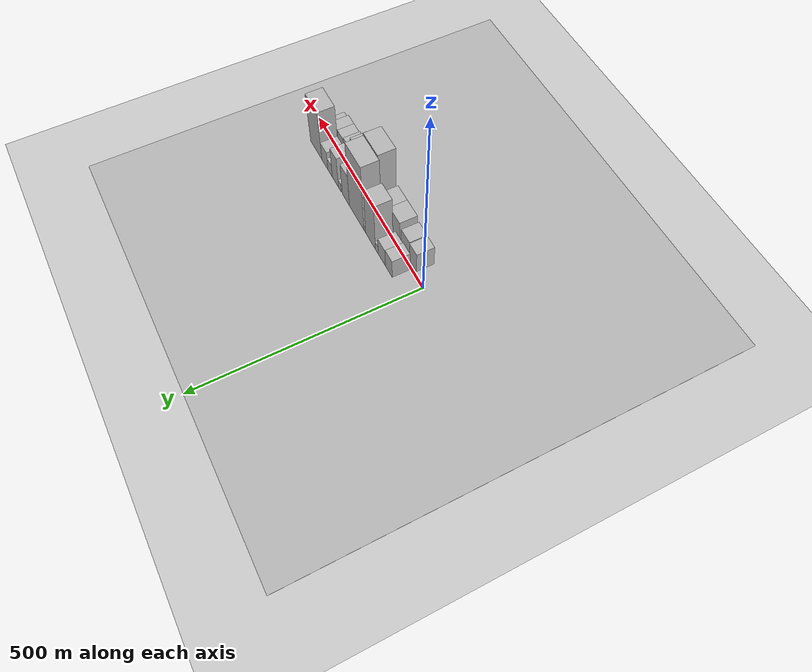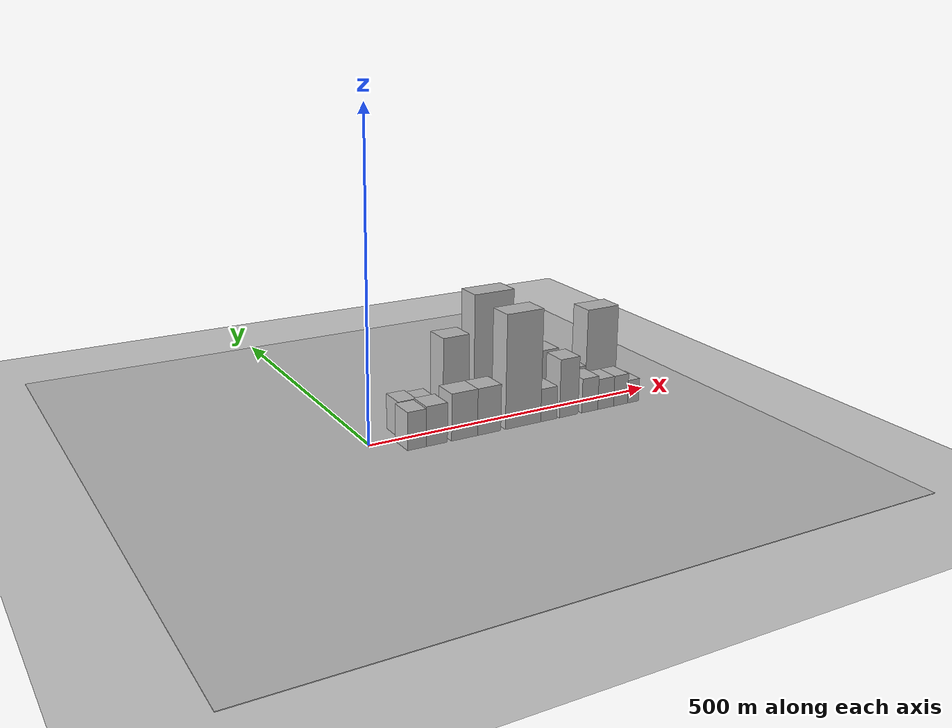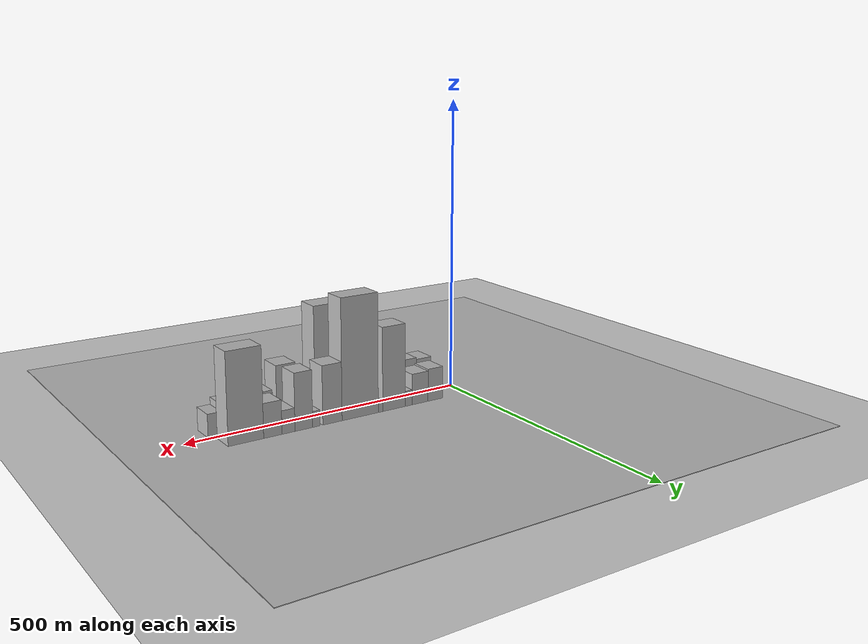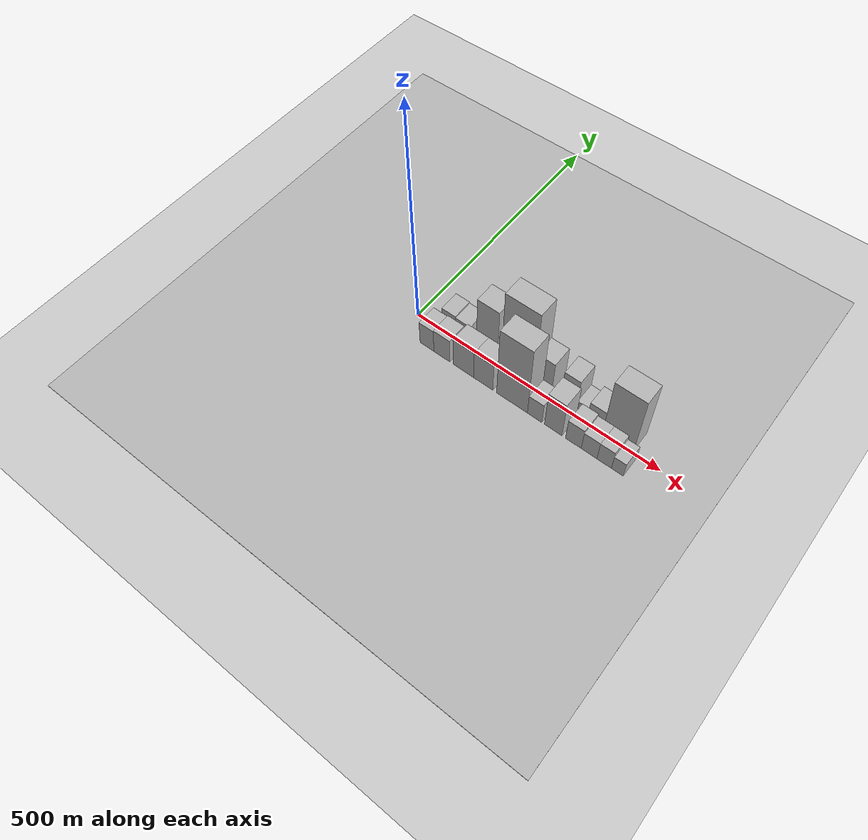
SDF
<?xml version="1.0" encoding="utf-8"?>

<sdf version="1.6">

   <world name="default">

      <gui fullscreen="0">

         <camera name="user_camera">

            <pose>-15 0 4.57585 0 0 0</pose>

            <view_controller>orbit</view_controller>

         </camera>

      </gui>

      <scene>

         <sky>

           <clouds>

             <speed>12</speed>

           </clouds>

         </sky>

         <ambient>0.4 0.4 0.4 1</ambient>

         <background>0.7 0.7 0.7 1</background>

         <shadows>1</shadows>

      </scene>

      <gravity>0 0 -9.8066</gravity>

      <magnetic_field>6e-06 2.3e-05 -4.2e-05</magnetic_field>

      <physics default="0" name="default_physics" type="ode">

         <ode>

            <solver>

               <type>quick</type>

               <iters>10</iters>

               <sor>1.0</sor>

               <use_dynamic_moi_rescaling>0</use_dynamic_moi_rescaling>

            </solver>

            <constraints>

               <cfm>0</cfm>

               <erp>0.2</erp>

               <contact_max_correcting_vel>100</contact_max_correcting_vel>

               <contact_surface_layer>0.001</contact_surface_layer>

            </constraints>

         </ode>

         <max_step_size>0.004</max_step_size>

         <real_time_factor>1</real_time_factor>

         <real_time_update_rate>250</real_time_update_rate>

      </physics>

      <light name="sun" type="directional">

         <cast_shadows>1</cast_shadows>

         <pose>0 0 10 0 0 0</pose>

         <diffuse>0.8 0.8 0.8 1</diffuse>

         <specular>0.2 0.2 0.2 1</specular>

         <attenuation>

            <range>1000</range>

            <constant>0.9</constant>

            <linear>0.01</linear>

            <quadratic>0.001</quadratic>

         </attenuation>

         <direction>-0.5 0.1 -0.9</direction>

      </light>

      <include>

         <name>ground_plane_1</name>

         <uri>model://HANNAS_ground_plane</uri>

         <pose>0 0 0  0 0 0</pose>

      </include>

      <include>

         <name>ground_plane_2</name>

         <uri>model://HANNAS_ground_plane</uri>

         <pose>100 0 0  0 0 0</pose>

      </include>

      <model name="building_1">

         <static>1</static>

         <pose frame="">65.0973 24.5000 0 0.000000 0.000000 1.570796</pose>

         <link name="link">

            <pose frame="">0 0 28.50 0 0 0</pose>

            <collision name="collision">

               <geometry>

                  <box>

                     <size>40.0000 30.1947 57.0000</size>

                  </box>

               </geometry>

               <max_contacts>10</max_contacts>

               <surface>

                  <contact>

                     <ode/>

                  </contact>

                  <bounce/>

                  <friction>

                     <torsional>

                        <ode/>

                     </torsional>

                     <ode/>

                  </friction>

               </surface>

            </collision>

            <visual name="visual">

               <cast_shadows>0</cast_shadows>

               <geometry>

                  <box>

                     <size>40.0000 30.1947 57.0000</size>

                  </box>

               </geometry>

               <material>

                  <script>

                     <uri>model://HANNAS_wall/materials/scripts</uri>

                     <uri>model://HANNAS_wall/materials/textures</uri>

                     <name>vrc/HANNAS_wall</name>

                  </script>

               </material>

            </visual>

            <self_collide>0</self_collide>

            <enable_wind>0</enable_wind>

            <kinematic>0</kinematic>

         </link>

      </model>

      <model name="building_2">

         <static>1</static>

         <pose frame="">96.3905 24.5000 0 0.000000 0.000000 1.570796</pose>

         <link name="link">

            <pose frame="">0 0 27.00 0 0 0</pose>

            <collision name="collision">

               <geometry>

                  <box>

                     <size>40.0000 32.3916 54.0000</size>

                  </box>

               </geometry>

               <max_contacts>10</max_contacts>

               <surface>

                  <contact>

                     <ode/>

                  </contact>

                  <bounce/>

                  <friction>

                     <torsional>

                        <ode/>

                     </torsional>

                     <ode/>

                  </friction>

               </surface>

            </collision>

            <visual name="visual">

               <cast_shadows>0</cast_shadows>

               <geometry>

                  <box>

                     <size>40.0000 32.3916 54.0000</size>

                  </box>

               </geometry>

               <material>

                  <script>

                     <uri>model://HANNAS_wall/materials/scripts</uri>

                     <uri>model://HANNAS_wall/materials/textures</uri>

                     <name>vrc/HANNAS_wall</name>

                  </script>

               </material>

            </visual>

            <self_collide>0</self_collide>

            <enable_wind>0</enable_wind>

            <kinematic>0</kinematic>

         </link>

      </model>

      <model name="building_3">

         <static>1</static>

         <pose frame="">119.2140 24.5000 0 0.000000 0.000000 1.570796</pose>

         <link name="link">

            <pose frame="">0 0 13.50 0 0 0</pose>

            <collision name="collision">

               <geometry>

                  <box>

                     <size>40.0000 13.2555 27.0000</size>

                  </box>

               </geometry>

               <max_contacts>10</max_contacts>

               <surface>

                  <contact>

                     <ode/>

                  </contact>

                  <bounce/>

                  <friction>

                     <torsional>

                        <ode/>

                     </torsional>

                     <ode/>

                  </friction>

               </surface>

            </collision>

            <visual name="visual">

               <cast_shadows>0</cast_shadows>

               <geometry>

                  <box>

                     <size>40.0000 13.2555 27.0000</size>

                  </box>

               </geometry>

               <material>

                  <script>

                     <uri>model://HANNAS_wall/materials/scripts</uri>

                     <uri>model://HANNAS_wall/materials/textures</uri>

                     <name>vrc/HANNAS_wall</name>

                  </script>

               </material>

            </visual>

            <self_collide>0</self_collide>

            <enable_wind>0</enable_wind>

            <kinematic>0</kinematic>

         </link>

      </model>

      <model name="building_4">

         <static>1</static>

         <pose frame="">148.2924 24.5000 0 0.000000 0.000000 1.570796</pose>

         <link name="link">

            <pose frame="">0 0 72.00 0 0 0</pose>

            <collision name="collision">

               <geometry>

                  <box>

                     <size>40.0000 44.9013 144.0000</size>

                  </box>

               </geometry>

               <max_contacts>10</max_contacts>

               <surface>

                  <contact>

                     <ode/>

                  </contact>

                  <bounce/>

                  <friction>

                     <torsional>

                        <ode/>

                     </torsional>

                     <ode/>

                  </friction>

               </surface>

            </collision>

            <visual name="visual">

               <cast_shadows>0</cast_shadows>

               <geometry>

                  <box>

                     <size>40.0000 44.9013 144.0000</size>

                  </box>

               </geometry>

               <material>

                  <script>

                     <uri>model://HANNAS_wall/materials/scripts</uri>

                     <uri>model://HANNAS_wall/materials/textures</uri>

                     <name>vrc/HANNAS_wall</name>

                  </script>

               </material>

            </visual>

            <self_collide>0</self_collide>

            <enable_wind>0</enable_wind>

            <kinematic>0</kinematic>

         </link>

      </model>

      <model name="building_5">

         <static>1</static>

         <pose frame="">175.0160 24.5000 0 0.000000 0.000000 1.570796</pose>

         <link name="link">

            <pose frame="">0 0 10.50 0 0 0</pose>

            <collision name="collision">

               <geometry>

                  <box>

                     <size>40.0000 8.5459 21.0000</size>

                  </box>

               </geometry>

               <max_contacts>10</max_contacts>

               <surface>

                  <contact>

                     <ode/>

                  </contact>

                  <bounce/>

                  <friction>

                     <torsional>

                        <ode/>

                     </torsional>

                     <ode/>

                  </friction>

               </surface>

            </collision>

            <visual name="visual">

               <cast_shadows>0</cast_shadows>

               <geometry>

                  <box>

                     <size>40.0000 8.5459 21.0000</size>

                  </box>

               </geometry>

               <material>

                  <script>

                     <uri>model://HANNAS_wall/materials/scripts</uri>

                     <uri>model://HANNAS_wall/materials/textures</uri>

                     <name>vrc/HANNAS_wall</name>

                  </script>

               </material>

            </visual>

            <self_collide>0</self_collide>

            <enable_wind>0</enable_wind>

            <kinematic>0</kinematic>

         </link>

      </model>

      <model name="building_6">

         <static>1</static>

         <pose frame="">213.6479 24.5000 0 0.000000 0.000000 1.570796</pose>

         <link name="link">

            <pose frame="">0 0 102.00 0 0 0</pose>

            <collision name="collision">

               <geometry>

                  <box>

                     <size>40.0000 68.7178 204.0000</size>

                  </box>

               </geometry>

               <max_contacts>10</max_contacts>

               <surface>

                  <contact>

                     <ode/>

                  </contact>

                  <bounce/>

                  <friction>

                     <torsional>

                        <ode/>

                     </torsional>

                     <ode/>

                  </friction>

               </surface>

            </collision>

            <visual name="visual">

               <cast_shadows>0</cast_shadows>

               <geometry>

                  <box>

                     <size>40.0000 68.7178 204.0000</size>

                  </box>

               </geometry>

               <material>

                  <script>

                     <uri>model://HANNAS_wall/materials/scripts</uri>

                     <uri>model://HANNAS_wall/materials/textures</uri>

                     <name>vrc/HANNAS_wall</name>

                  </script>

               </material>

            </visual>

            <self_collide>0</self_collide>

            <enable_wind>0</enable_wind>

            <kinematic>0</kinematic>

         </link>

      </model>

      <model name="building_7">

         <static>1</static>

         <pose frame="">265.7248 24.5000 0 0.000000 0.000000 1.570796</pose>

         <link name="link">

            <pose frame="">0 0 49.50 0 0 0</pose>

            <collision name="collision">

               <geometry>

                  <box>

                     <size>40.0000 35.4359 99.0000</size>

                  </box>

               </geometry>

               <max_contacts>10</max_contacts>

               <surface>

                  <contact>

                     <ode/>

                  </contact>

                  <bounce/>

                  <friction>

                     <torsional>

                        <ode/>

                     </torsional>

                     <ode/>

                  </friction>

               </surface>

            </collision>

            <visual name="visual">

               <cast_shadows>0</cast_shadows>

               <geometry>

                  <box>

                     <size>40.0000 35.4359 99.0000</size>

                  </box>

               </geometry>

               <material>

                  <script>

                     <uri>model://HANNAS_wall/materials/scripts</uri>

                     <uri>model://HANNAS_wall/materials/textures</uri>

                     <name>vrc/HANNAS_wall</name>

                  </script>

               </material>

            </visual>

            <self_collide>0</self_collide>

            <enable_wind>0</enable_wind>

            <kinematic>0</kinematic>

         </link>

      </model>

      <model name="building_8">

         <static>1</static>

         <pose frame="">295.1409 24.5000 0 0.000000 0.000000 1.570796</pose>

         <link name="link">

            <pose frame="">0 0 13.50 0 0 0</pose>

            <collision name="collision">

               <geometry>

                  <box>

                     <size>40.0000 13.3963 27.0000</size>

                  </box>

               </geometry>

               <max_contacts>10</max_contacts>

               <surface>

                  <contact>

                     <ode/>

                  </contact>

                  <bounce/>

                  <friction>

                     <torsional>

                        <ode/>

                     </torsional>

                     <ode/>

                  </friction>

               </surface>

            </collision>

            <visual name="visual">

               <cast_shadows>0</cast_shadows>

               <geometry>

                  <box>

                     <size>40.0000 13.3963 27.0000</size>

                  </box>

               </geometry>

               <material>

                  <script>

                     <uri>model://HANNAS_wall/materials/scripts</uri>

                     <uri>model://HANNAS_wall/materials/textures</uri>

                     <name>vrc/HANNAS_wall</name>

                  </script>

               </material>

            </visual>

            <self_collide>0</self_collide>

            <enable_wind>0</enable_wind>

            <kinematic>0</kinematic>

         </link>

      </model>

      <model name="building_9">

         <static>1</static>

         <pose frame="">317.4886 24.5000 0 0.000000 0.000000 1.570796</pose>

         <link name="link">

            <pose frame="">0 0 48.00 0 0 0</pose>

            <collision name="collision">

               <geometry>

                  <box>

                     <size>40.0000 31.2992 96.0000</size>

                  </box>

               </geometry>

               <max_contacts>10</max_contacts>

               <surface>

                  <contact>

                     <ode/>

                  </contact>

                  <bounce/>

                  <friction>

                     <torsional>

                        <ode/>

                     </torsional>

                     <ode/>

                  </friction>

               </surface>

            </collision>

            <visual name="visual">

               <cast_shadows>0</cast_shadows>

               <geometry>

                  <box>

                     <size>40.0000 31.2992 96.0000</size>

                  </box>

               </geometry>

               <material>

                  <script>

                     <uri>model://HANNAS_wall/materials/scripts</uri>

                     <uri>model://HANNAS_wall/materials/textures</uri>

                     <name>vrc/HANNAS_wall</name>

                  </script>

               </material>

            </visual>

            <self_collide>0</self_collide>

            <enable_wind>0</enable_wind>

            <kinematic>0</kinematic>

         </link>

      </model>

      <model name="building_10">

         <static>1</static>

         <pose frame="">344.5694 24.5000 0 0.000000 0.000000 1.570796</pose>

         <link name="link">

            <pose frame="">0 0 19.50 0 0 0</pose>

            <collision name="collision">

               <geometry>

                  <box>

                     <size>40.0000 22.8624 39.0000</size>

                  </box>

               </geometry>

               <max_contacts>10</max_contacts>

               <surface>

                  <contact>

                     <ode/>

                  </contact>

                  <bounce/>

                  <friction>

                     <torsional>

                        <ode/>

                     </torsional>

                     <ode/>

                  </friction>

               </surface>

            </collision>

            <visual name="visual">

               <cast_shadows>0</cast_shadows>

               <geometry>

                  <box>

                     <size>40.0000 22.8624 39.0000</size>

                  </box>

               </geometry>

               <material>

                  <script>

                     <uri>model://HANNAS_wall/materials/scripts</uri>

                     <uri>model://HANNAS_wall/materials/textures</uri>

                     <name>vrc/HANNAS_wall</name>

                  </script>

               </material>

            </visual>

            <self_collide>0</self_collide>

            <enable_wind>0</enable_wind>

            <kinematic>0</kinematic>

         </link>

      </model>

      <model name="building_11">

         <static>1</static>

         <pose frame="">371.7486 24.5000 0 0.000000 0.000000 1.570796</pose>

         <link name="link">

            <pose frame="">0 0 28.50 0 0 0</pose>

            <collision name="collision">

               <geometry>

                  <box>

                     <size>40.0000 31.4959 57.0000</size>

                  </box>

               </geometry>

               <max_contacts>10</max_contacts>

               <surface>

                  <contact>

                     <ode/>

                  </contact>

                  <bounce/>

                  <friction>

                     <torsional>

                        <ode/>

                     </torsional>

                     <ode/>

                  </friction>

               </surface>

            </collision>

            <visual name="visual">

               <cast_shadows>0</cast_shadows>

               <geometry>

                  <box>

                     <size>40.0000 31.4959 57.0000</size>

                  </box>

               </geometry>

               <material>

                  <script>

                     <uri>model://HANNAS_wall/materials/scripts</uri>

                     <uri>model://HANNAS_wall/materials/textures</uri>

                     <name>vrc/HANNAS_wall</name>

                  </script>

               </material>

            </visual>

            <self_collide>0</self_collide>

            <enable_wind>0</enable_wind>

            <kinematic>0</kinematic>

         </link>

      </model>

      <model name="building_12">

         <static>1</static>

         <pose frame="">417.1908 24.5000 0 0.000000 0.000000 1.570796</pose>

         <link name="link">

            <pose frame="">0 0 75.00 0 0 0</pose>

            <collision name="collision">

               <geometry>

                  <box>

                     <size>40.0000 59.3887 150.0000</size>

                  </box>

               </geometry>

               <max_contacts>10</max_contacts>

               <surface>

                  <contact>

                     <ode/>

                  </contact>

                  <bounce/>

                  <friction>

                     <torsional>

                        <ode/>

                     </torsional>

                     <ode/>

                  </friction>

               </surface>

            </collision>

            <visual name="visual">

               <cast_shadows>0</cast_shadows>

               <geometry>

                  <box>

                     <size>40.0000 59.3887 150.0000</size>

                  </box>

               </geometry>

               <material>

                  <script>

                     <uri>model://HANNAS_wall/materials/scripts</uri>

                     <uri>model://HANNAS_wall/materials/textures</uri>

                     <name>vrc/HANNAS_wall</name>

                  </script>

               </material>

            </visual>

            <self_collide>0</self_collide>

            <enable_wind>0</enable_wind>

            <kinematic>0</kinematic>

         </link>

      </model>

      <model name="building_13">

         <static>1</static>

         <pose frame="">55.4658 -24.5000 0 0.000000 0.000000 1.570796</pose>

         <link name="link">

            <pose frame="">0 0 30.00 0 0 0</pose>

            <collision name="collision">

               <geometry>

                  <box>

                     <size>40.0000 30.9317 60.0000</size>

                  </box>

               </geometry>

               <max_contacts>10</max_contacts>

               <surface>

                  <contact>

                     <ode/>

                  </contact>

                  <bounce/>

                  <friction>

                     <torsional>

                        <ode/>

                     </torsional>

                     <ode/>

                  </friction>

               </surface>

            </collision>

            <visual name="visual">

               <cast_shadows>0</cast_shadows>

               <geometry>

                  <box>

                     <size>40.0000 30.9317 60.0000</size>

                  </box>

               </geometry>

               <material>

                  <script>

                     <uri>model://HANNAS_wall/materials/scripts</uri>

                     <uri>model://HANNAS_wall/materials/textures</uri>

                     <name>vrc/HANNAS_wall</name>

                  </script>

               </material>

            </visual>

            <self_collide>0</self_collide>

            <enable_wind>0</enable_wind>

            <kinematic>0</kinematic>

         </link>

      </model>

      <model name="building_14">

         <static>1</static>

         <pose frame="">88.6021 -24.5000 0 0.000000 0.000000 1.570796</pose>

         <link name="link">

            <pose frame="">0 0 31.50 0 0 0</pose>

            <collision name="collision">

               <geometry>

                  <box>

                     <size>40.0000 35.3409 63.0000</size>

                  </box>

               </geometry>

               <max_contacts>10</max_contacts>

               <surface>

                  <contact>

                     <ode/>

                  </contact>

                  <bounce/>

                  <friction>

                     <torsional>

                        <ode/>

                     </torsional>

                     <ode/>

                  </friction>

               </surface>

            </collision>

            <visual name="visual">

               <cast_shadows>0</cast_shadows>

               <geometry>

                  <box>

                     <size>40.0000 35.3409 63.0000</size>

                  </box>

               </geometry>

               <material>

                  <script>

                     <uri>model://HANNAS_wall/materials/scripts</uri>

                     <uri>model://HANNAS_wall/materials/textures</uri>

                     <name>vrc/HANNAS_wall</name>

                  </script>

               </material>

            </visual>

            <self_collide>0</self_collide>

            <enable_wind>0</enable_wind>

            <kinematic>0</kinematic>

         </link>

      </model>

      <model name="building_15">

         <static>1</static>

         <pose frame="">135.4819 -24.5000 0 0.000000 0.000000 1.570796</pose>

         <link name="link">

            <pose frame="">0 0 37.50 0 0 0</pose>

            <collision name="collision">

               <geometry>

                  <box>

                     <size>40.0000 44.4186 75.0000</size>

                  </box>

               </geometry>

               <max_contacts>10</max_contacts>

               <surface>

                  <contact>

                     <ode/>

                  </contact>

                  <bounce/>

                  <friction>

                     <torsional>

                        <ode/>

                     </torsional>

                     <ode/>

                  </friction>

               </surface>

            </collision>

            <visual name="visual">

               <cast_shadows>0</cast_shadows>

               <geometry>

                  <box>

                     <size>40.0000 44.4186 75.0000</size>

                  </box>

               </geometry>

               <material>

                  <script>

                     <uri>model://HANNAS_wall/materials/scripts</uri>

                     <uri>model://HANNAS_wall/materials/textures</uri>

                     <name>vrc/HANNAS_wall</name>

                  </script>

               </material>

            </visual>

            <self_collide>0</self_collide>

            <enable_wind>0</enable_wind>

            <kinematic>0</kinematic>

         </link>

      </model>

      <model name="building_16">

         <static>1</static>

         <pose frame="">178.0255 -24.5000 0 0.000000 0.000000 1.570796</pose>

         <link name="link">

            <pose frame="">0 0 37.50 0 0 0</pose>

            <collision name="collision">

               <geometry>

                  <box>

                     <size>40.0000 40.6685 75.0000</size>

                  </box>

               </geometry>

               <max_contacts>10</max_contacts>

               <surface>

                  <contact>

                     <ode/>

                  </contact>

                  <bounce/>

                  <friction>

                     <torsional>

                        <ode/>

                     </torsional>

                     <ode/>

                  </friction>

               </surface>

            </collision>

            <visual name="visual">

               <cast_shadows>0</cast_shadows>

               <geometry>

                  <box>

                     <size>40.0000 40.6685 75.0000</size>

                  </box>

               </geometry>

               <material>

                  <script>

                     <uri>model://HANNAS_wall/materials/scripts</uri>

                     <uri>model://HANNAS_wall/materials/textures</uri>

                     <name>vrc/HANNAS_wall</name>

                  </script>

               </material>

            </visual>

            <self_collide>0</self_collide>

            <enable_wind>0</enable_wind>

            <kinematic>0</kinematic>

         </link>

      </model>

      <model name="building_17">

         <static>1</static>

         <pose frame="">238.2441 -24.5000 0 0.000000 0.000000 1.570796</pose>

         <link name="link">

            <pose frame="">0 0 91.50 0 0 0</pose>

            <collision name="collision">

               <geometry>

                  <box>

                     <size>40.0000 63.7687 183.0000</size>

                  </box>

               </geometry>

               <max_contacts>10</max_contacts>

               <surface>

                  <contact>

                     <ode/>

                  </contact>

                  <bounce/>

                  <friction>

                     <torsional>

                        <ode/>

                     </torsional>

                     <ode/>

                  </friction>

               </surface>

            </collision>

            <visual name="visual">

               <cast_shadows>0</cast_shadows>

               <geometry>

                  <box>

                     <size>40.0000 63.7687 183.0000</size>

                  </box>

               </geometry>

               <material>

                  <script>

                     <uri>model://HANNAS_wall/materials/scripts</uri>

                     <uri>model://HANNAS_wall/materials/textures</uri>

                     <name>vrc/HANNAS_wall</name>

                  </script>

               </material>

            </visual>

            <self_collide>0</self_collide>

            <enable_wind>0</enable_wind>

            <kinematic>0</kinematic>

         </link>

      </model>

      <model name="building_18">

         <static>1</static>

         <pose frame="">284.9114 -24.5000 0 0.000000 0.000000 1.570796</pose>

         <link name="link">

            <pose frame="">0 0 27.00 0 0 0</pose>

            <collision name="collision">

               <geometry>

                  <box>

                     <size>40.0000 29.5658 54.0000</size>

                  </box>

               </geometry>

               <max_contacts>10</max_contacts>

               <surface>

                  <contact>

                     <ode/>

                  </contact>

                  <bounce/>

                  <friction>

                     <torsional>

                        <ode/>

                     </torsional>

                     <ode/>

                  </friction>

               </surface>

            </collision>

            <visual name="visual">

               <cast_shadows>0</cast_shadows>

               <geometry>

                  <box>

                     <size>40.0000 29.5658 54.0000</size>

                  </box>

               </geometry>

               <material>

                  <script>

                     <uri>model://HANNAS_wall/materials/scripts</uri>

                     <uri>model://HANNAS_wall/materials/textures</uri>

                     <name>vrc/HANNAS_wall</name>

                  </script>

               </material>

            </visual>

            <self_collide>0</self_collide>

            <enable_wind>0</enable_wind>

            <kinematic>0</kinematic>

         </link>

      </model>

      <model name="building_19">

         <static>1</static>

         <pose frame="">322.1823 -24.5000 0 0.000000 0.000000 1.570796</pose>

         <link name="link">

            <pose frame="">0 0 48.00 0 0 0</pose>

            <collision name="collision">

               <geometry>

                  <box>

                     <size>40.0000 34.9760 96.0000</size>

                  </box>

               </geometry>

               <max_contacts>10</max_contacts>

               <surface>

                  <contact>

                     <ode/>

                  </contact>

                  <bounce/>

                  <friction>

                     <torsional>

                        <ode/>

                     </torsional>

                     <ode/>

                  </friction>

               </surface>

            </collision>

            <visual name="visual">

               <cast_shadows>0</cast_shadows>

               <geometry>

                  <box>

                     <size>40.0000 34.9760 96.0000</size>

                  </box>

               </geometry>

               <material>

                  <script>

                     <uri>model://HANNAS_wall/materials/scripts</uri>

                     <uri>model://HANNAS_wall/materials/textures</uri>

                     <name>vrc/HANNAS_wall</name>

                  </script>

               </material>

            </visual>

            <self_collide>0</self_collide>

            <enable_wind>0</enable_wind>

            <kinematic>0</kinematic>

         </link>

      </model>

      <model name="building_20">

         <static>1</static>

         <pose frame="">362.1376 -24.5000 0 0.000000 0.000000 1.570796</pose>

         <link name="link">

            <pose frame="">0 0 28.50 0 0 0</pose>

            <collision name="collision">

               <geometry>

                  <box>

                     <size>40.0000 30.9346 57.0000</size>

                  </box>

               </geometry>

               <max_contacts>10</max_contacts>

               <surface>

                  <contact>

                     <ode/>

                  </contact>

                  <bounce/>

                  <friction>

                     <torsional>

                        <ode/>

                     </torsional>

                     <ode/>

                  </friction>

               </surface>

            </collision>

            <visual name="visual">

               <cast_shadows>0</cast_shadows>

               <geometry>

                  <box>

                     <size>40.0000 30.9346 57.0000</size>

                  </box>

               </geometry>

               <material>

                  <script>

                     <uri>model://HANNAS_wall/materials/scripts</uri>

                     <uri>model://HANNAS_wall/materials/textures</uri>

                     <name>vrc/HANNAS_wall</name>

                  </script>

               </material>

            </visual>

            <self_collide>0</self_collide>

            <enable_wind>0</enable_wind>

            <kinematic>0</kinematic>

         </link>

      </model>

      <model name="building_21">

         <static>1</static>

         <pose frame="">392.8339 -24.5000 0 0.000000 0.000000 1.570796</pose>

         <link name="link">

            <pose frame="">0 0 25.50 0 0 0</pose>

            <collision name="collision">

               <geometry>

                  <box>

                     <size>40.0000 30.4580 51.0000</size>

                  </box>

               </geometry>

               <max_contacts>10</max_contacts>

               <surface>

                  <contact>

                     <ode/>

                  </contact>

                  <bounce/>

                  <friction>

                     <torsional>

                        <ode/>

                     </torsional>

                     <ode/>

                  </friction>

               </surface>

            </collision>

            <visual name="visual">

               <cast_shadows>0</cast_shadows>

               <geometry>

                  <box>

                     <size>40.0000 30.4580 51.0000</size>

                  </box>

               </geometry>

               <material>

                  <script>

                     <uri>model://HANNAS_wall/materials/scripts</uri>

                     <uri>model://HANNAS_wall/materials/textures</uri>

                     <name>vrc/HANNAS_wall</name>

                  </script>

               </material>

            </visual>

            <self_collide>0</self_collide>

            <enable_wind>0</enable_wind>

            <kinematic>0</kinematic>

         </link>

      </model>

      <model name="building_22">

         <static>1</static>

         <pose frame="">421.8794 -24.5000 0 0.000000 0.000000 1.570796</pose>

         <link name="link">

            <pose frame="">0 0 25.50 0 0 0</pose>

            <collision name="collision">

               <geometry>

                  <box>

                     <size>40.0000 27.6329 51.0000</size>

                  </box>

               </geometry>

               <max_contacts>10</max_contacts>

               <surface>

                  <contact>

                     <ode/>

                  </contact>

                  <bounce/>

                  <friction>

                     <torsional>

                        <ode/>

                     </torsional>

                     <ode/>

                  </friction>

               </surface>

            </collision>

            <visual name="visual">

               <cast_shadows>0</cast_shadows>

               <geometry>

                  <box>

                     <size>40.0000 27.6329 51.0000</size>

                  </box>

               </geometry>

               <material>

                  <script>

                     <uri>model://HANNAS_wall/materials/scripts</uri>

                     <uri>model://HANNAS_wall/materials/textures</uri>

                     <name>vrc/HANNAS_wall</name>

                  </script>

               </material>

            </visual>

            <self_collide>0</self_collide>

            <enable_wind>0</enable_wind>

            <kinematic>0</kinematic>

         </link>

      </model>

      <model name="building_23">

         <static>1</static>

         <pose frame="">446.8649 -24.5000 0 0.000000 0.000000 1.570796</pose>

         <link name="link">

            <pose frame="">0 0 19.50 0 0 0</pose>

            <collision name="collision">

               <geometry>

                  <box>

                     <size>40.0000 22.3381 39.0000</size>

                  </box>

               </geometry>

               <max_contacts>10</max_contacts>

               <surface>

                  <contact>

                     <ode/>

                  </contact>

                  <bounce/>

                  <friction>

                     <torsional>

                        <ode/>

                     </torsional>

                     <ode/>

                  </friction>

               </surface>

            </collision>

            <visual name="visual">

               <cast_shadows>0</cast_shadows>

               <geometry>

                  <box>

                     <size>40.0000 22.3381 39.0000</size>

                  </box>

               </geometry>

               <material>

                  <script>

                     <uri>model://HANNAS_wall/materials/scripts</uri>

                     <uri>model://HANNAS_wall/materials/textures</uri>

                     <name>vrc/HANNAS_wall</name>

                  </script>

               </material>

            </visual>

            <self_collide>0</self_collide>

            <enable_wind>0</enable_wind>

            <kinematic>0</kinematic>

         </link>

      </model>

   </world>

</sdf>

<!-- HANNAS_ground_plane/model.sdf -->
<sdf version="1.4">
<model name="HANNAS_ground_plane">
  <static>true</static>
    <link name="link">
      <collision name="collision">
        <geometry>
          <plane>
            <normal>0 0 1</normal>
            <size>1000 1000</size>
          </plane>
        </geometry>
        <surface>
          <friction>
            <ode>
              <mu>100</mu>
              <mu2>50</mu2>
            </ode>
          </friction>
        </surface>
      </collision>
      <visual name="visual">
        <cast_shadows>false</cast_shadows>
        <geometry>
          <plane>
            <normal>0 0 1</normal>
            <size>1000 1000</size>
          </plane>
        </geometry>
        <material>
          <script>
            <uri>model://HANNAS_ground_plane/materials/scripts/HANNAS_ground_plane.material</uri>
	    <uri>model://HANNAS_ground_plane/materials/textures</uri>
            <name>HANNASGroundPlane/Image</name>
          </script>
        </material>
      </visual>
    </link>
  </model>
</sdf>
